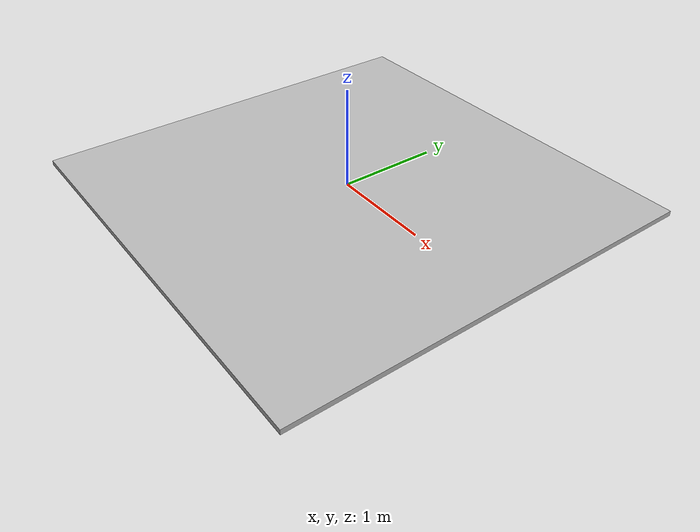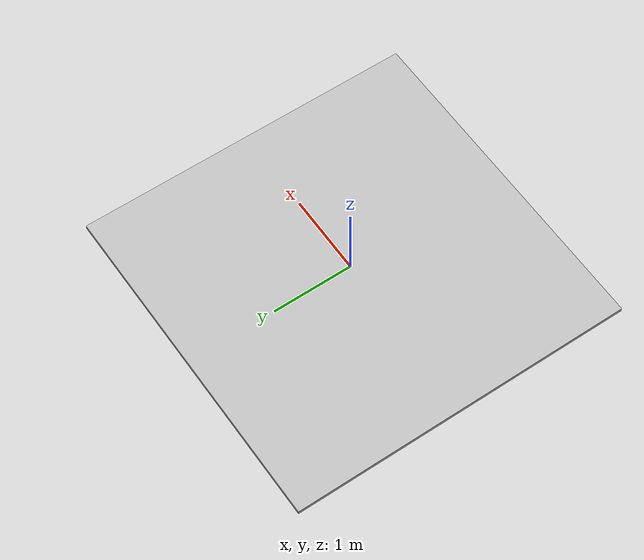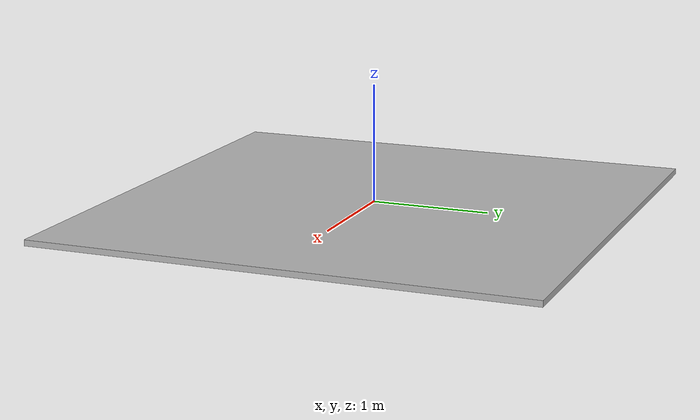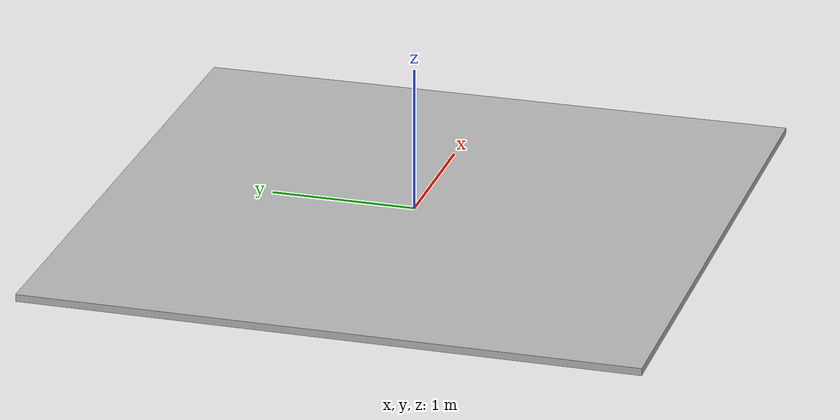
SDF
<?xml version="1.0"?>
<sdf version="1.6">
  <model name="ground_map">
    <static>true</static>
    <pose>0 0 -0.025 0 0 0</pose>
    <link name="link">
      <collision name="collision">
        <geometry><box><size>4.2 4.2 0.05</size></box></geometry>
      </collision>
      <visual name="visual">
        <geometry><box><size>4.2 4.2 0.05</size></box></geometry>
        <material>
          <script>
            <uri>model://ground_map/materials/scripts</uri>
            <uri>model://ground_map/materials/textures</uri>
            <name>ground_map</name>
          </script>
        </material>
      </visual>
    </link>
  </model>
</sdf>
